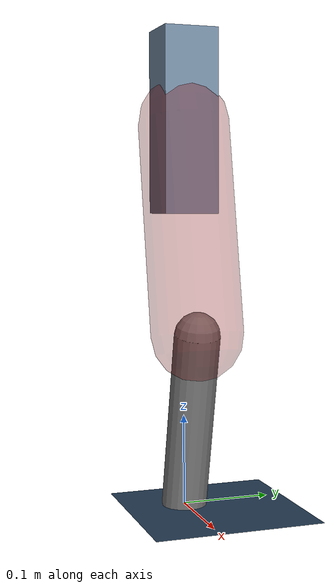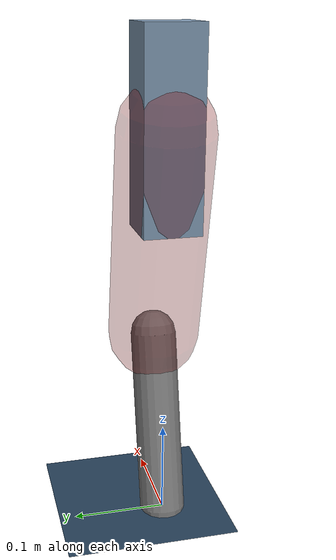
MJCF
<mujoco model="Hopper2D">
	<compiler inertiafromgeom="true" angle="radian" />
	<option timestep="0.001" integrator="implicit" cone="elliptic" solver="Newton" tolerance="1e-10" />

	<default>
		<geom contype="1" conaffinity="1" condim="3" friction="2 0.005 0.0001" solref="0.005 1" />
		<joint limited="true" damping="0.1" />
	</default>

	<asset>
		<texture name="skybox" type="skybox" builtin="gradient" rgb1=".4 .6 .8" rgb2="0 0 0" width="800" height="800" />
		<texture name="grid" type="2d" builtin="checker" rgb1=".1 .2 .3" rgb2=".2 .3 .4" width="300" height="300" mark="edge" markrgb=".2 .3 .4" />
		<material name="ground" texture="grid" texrepeat="1 1" texuniform="true" reflectance="0.1" />
		<material name="leg" rgba="0.5 0.6 0.7 1" />
	</asset>

	<worldbody>

		<geom name="floor" type="plane" size="5 5 0.25" material="ground" />

		<light directional="false" diffuse="0.8 0.8 0.8" specular="0.3 0.3 0.3" pos="0 0 2" dir="0 0 -1" />
		<light mode="targetbodycom" target="base" directional="false" diffuse="0.8 0.8 0.8" specular="0.3 0.3 0.3" pos="0 0 2" dir="0 0 -1" />

		<camera name="fixed" pos="0 -2 1" xyaxes="1 0 0 0 0 1" />
		<camera name="tracking" mode="trackcom" pos="0 -3 1" />

		<body name="root" pos="0 0 0.42584722844172274">
			<joint name="slide_x" type="slide" axis="1 0 0" range="-100 100" />
			<joint name="slide_z" type="slide" axis="0 0 1" range="0 10" />

			<body name="base" pos="0 0 0">
				<geom name="torso" type="box" size="0.03 0.03 0.1" mass="2.015" material="leg" />

				<body name="link1" pos="0 0 0" euler="0 1.372257827246547 0">
					<joint type="hinge" axis="0 -1 0" pos="0 0 0" name="hinge1" limited="true" range="-3.14 3.14" stiffness="0" damping="0.1" />
					<geom name="thigh" type="capsule" fromto="0 0 0 0.23459735770192325 0 0" size="0.05" rgba="0.5 0 0 0.3" mass="0.8167531300250005" />

					<body name="link2" pos="0.23459735770192325 0 0" euler="0 0.4305332157394078 0">
						<joint type="hinge" axis="0 -1 0" pos="0 0 0" name="hinge2" limited="true" range="-3.14 3.14" stiffness="0" damping="0.1" />
						<geom name="shank" type="capsule" fromto="0 0 0 0.20124987073979952 0 0" size="0.025" mass="0.4019248836658196" />

					</body>
				</body>
			</body>
		</body>
	</worldbody>

	<actuator>
		<motor name="torque1" joint="hinge1" ctrlrange="-86.82131740103803 86.82131740103803" ctrllimited="true" gear="1" />
		<motor name="torque2" joint="hinge2" ctrlrange="-75.3485309685471 75.3485309685471" ctrllimited="true" gear="1" />
	</actuator>
</mujoco>
